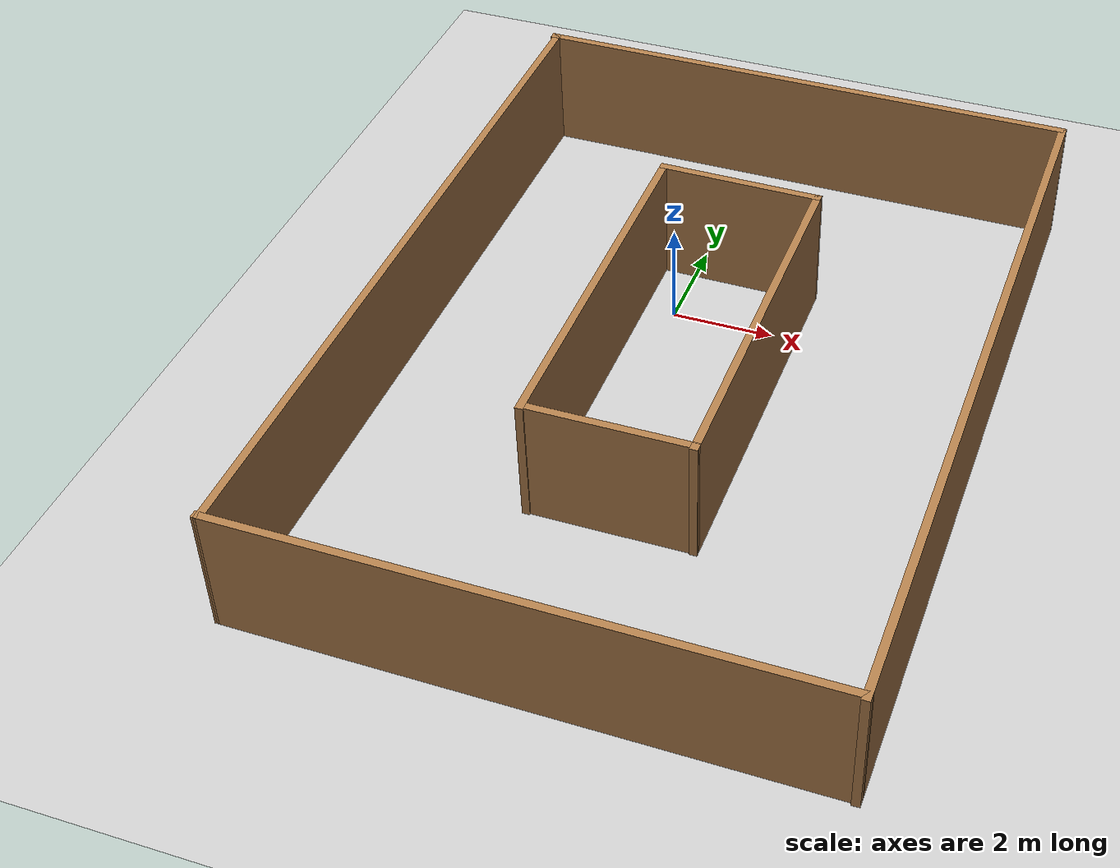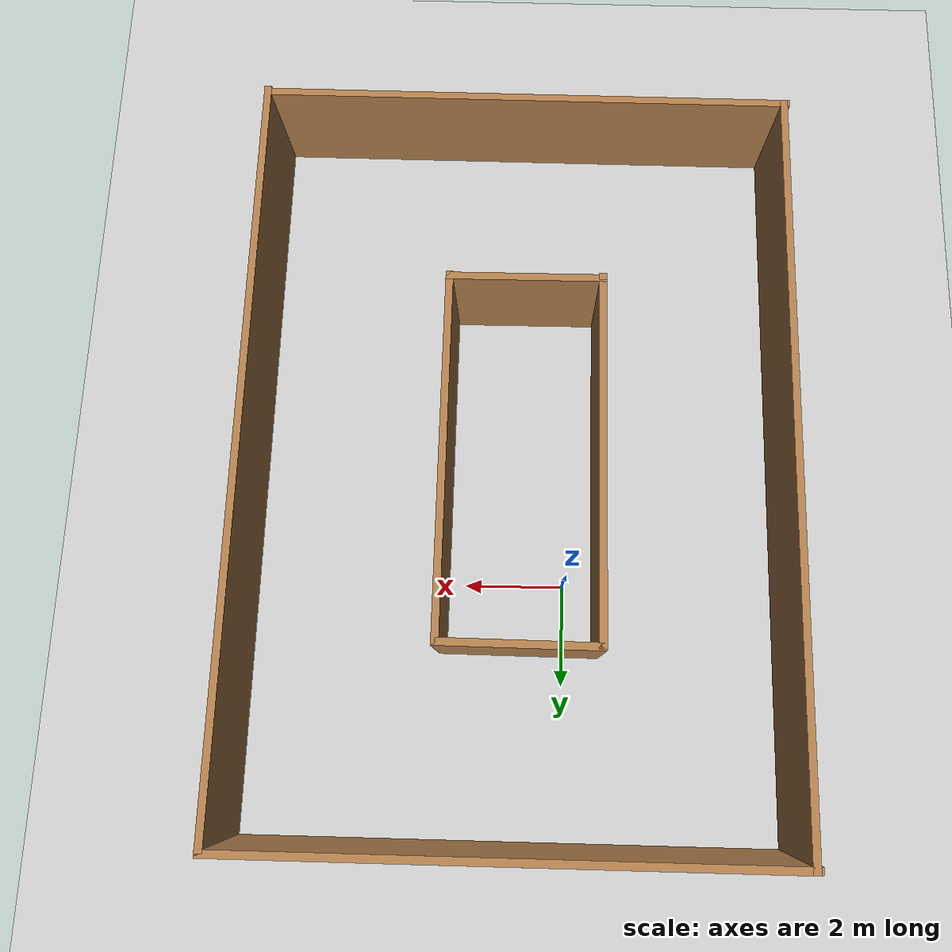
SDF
<?xml version="1.0" ?>
<sdf version="1.4">

  <world name="default">

    <include>
      <uri>model://ground_plane</uri>
    </include>

<model name='simple_world'>
    <pose frame=''>0.974545 -2.46087 0 0 -0 0</pose>
    <link name='Wall_0'>
      <collision name='Wall_0_Collision'>
        <geometry>
          <box>
            <size>15.2864 0.15 2.5</size>
          </box>
        </geometry>
        <pose frame=''>0 0 1.25 0 -0 0</pose>
      </collision>
      <visual name='Wall_0_Visual'>
        <pose frame=''>0 0 1.25 0 -0 0</pose>
        <geometry>
          <box>
            <size>15.2864 0.15 2.5</size>
          </box>
        </geometry>
        <material>
          <script>
            <uri>file://media/materials/scripts/gazebo.material</uri>
            <name>Gazebo/Wood</name>
          </script>
          <ambient>1 1 1 1</ambient>
        </material>
        <meta>
          <layer>0</layer>
        </meta>
      </visual>
      <pose frame=''>-5.41047 0.040317 0 0 -0 -1.5708</pose>
    </link>
    <link name='Wall_1'>
      <collision name='Wall_1_Collision'>
        <geometry>
          <box>
            <size>11.0519 0.15 2.5</size>
          </box>
        </geometry>
        <pose frame=''>0 0 1.25 0 -0 0</pose>
      </collision>
      <visual name='Wall_1_Visual'>
        <pose frame=''>0 0 1.25 0 -0 0</pose>
        <geometry>
          <box>
            <size>11.0519 0.15 2.5</size>
          </box>
        </geometry>
        <material>
          <script>
            <uri>file://media/materials/scripts/gazebo.material</uri>
            <name>Gazebo/Wood</name>
          </script>
          <ambient>1 1 1 1</ambient>
        </material>
        <meta>
          <layer>0</layer>
        </meta>
      </visual>
      <pose frame=''>-0 -7.54809 0 0 -0 -0.003711</pose>
    </link>
    <link name='Wall_2'>
      <collision name='Wall_2_Collision'>
        <geometry>
          <box>
            <size>15.2864 0.15 2.5</size>
          </box>
        </geometry>
        <pose frame=''>0 0 1.25 0 -0 0</pose>
      </collision>
      <visual name='Wall_2_Visual'>
        <pose frame=''>0 0 1.25 0 -0 0</pose>
        <geometry>
          <box>
            <size>15.2864 0.15 2.5</size>
          </box>
        </geometry>
        <material>
          <script>
            <uri>file://media/materials/scripts/gazebo.material</uri>
            <name>Gazebo/Wood</name>
          </script>
          <ambient>1 1 1 1</ambient>
        </material>
        <meta>
          <layer>0</layer>
        </meta>
      </visual>
      <pose frame=''>5.45092 -0.040594 0 0 -0 1.5708</pose>
    </link>
    <link name='Wall_3'>
      <collision name='Wall_3_Collision'>
        <geometry>
          <box>
            <size>11.0519 0.15 2.5</size>
          </box>
        </geometry>
        <pose frame=''>0 0 1.25 0 -0 0</pose>
      </collision>
      <visual name='Wall_3_Visual'>
        <pose frame=''>0 0 1.25 0 -0 0</pose>
        <geometry>
          <box>
            <size>11.0519 0.15 2.5</size>
          </box>
        </geometry>
        <material>
          <script>
            <uri>file://media/materials/scripts/gazebo.material</uri>
            <name>Gazebo/Wood</name>
          </script>
          <ambient>1 1 1 1</ambient>
        </material>
        <meta>
          <layer>0</layer>
        </meta>
      </visual>
      <pose frame=''>-0 7.58827 0 0 -0 3.13788</pose>
    </link>
    <link name='Wall_5'>
      <collision name='Wall_5_Collision'>
        <geometry>
          <box>
            <size>7.4546 0.15 2.5</size>
          </box>
        </geometry>
        <pose frame=''>0 0 1.25 0 -0 0</pose>
      </collision>
      <visual name='Wall_5_Visual'>
        <pose frame=''>0 0 1.25 0 -0 0</pose>
        <geometry>
          <box>
            <size>7.4546 0.15 2.5</size>
          </box>
        </geometry>
        <material>
          <script>
            <uri>file://media/materials/scripts/gazebo.material</uri>
            <name>Gazebo/Wood</name>
          </script>
          <ambient>1 1 1 1</ambient>
        </material>
        <meta>
          <layer>0</layer>
        </meta>
      </visual>
      <pose frame=''>-1.64348 0.140571 0 0 -0 1.57516</pose>
    </link>
    <link name='Wall_6'>
      <collision name='Wall_6_Collision'>
        <geometry>
          <box>
            <size>3.2646 0.15 2.5</size>
          </box>
        </geometry>
        <pose frame=''>0 0 1.25 0 -0 0</pose>
      </collision>
      <visual name='Wall_6_Visual'>
        <pose frame=''>0 0 1.25 0 -0 0</pose>
        <geometry>
          <box>
            <size>3.2646 0.15 2.5</size>
          </box>
        </geometry>
        <material>
          <script>
            <uri>file://media/materials/scripts/gazebo.material</uri>
            <name>Gazebo/Wood</name>
          </script>
          <ambient>1 1 1 1</ambient>
        </material>
        <meta>
          <layer>0</layer>
        </meta>
      </visual>
      <pose frame=''>-0.102187 3.80491 0 0 -0 -0.009332</pose>
    </link>
    <link name='Wall_7'>
      <collision name='Wall_7_Collision'>
        <geometry>
          <box>
            <size>7.41408 0.15 2.5</size>
          </box>
        </geometry>
        <pose frame=''>0 0 1.25 0 -0 0</pose>
      </collision>
      <visual name='Wall_7_Visual'>
        <pose frame=''>0 0 1.25 0 -0 0</pose>
        <geometry>
          <box>
            <size>7.41408 0.15 2.5</size>
          </box>
        </geometry>
        <material>
          <script>
            <uri>file://media/materials/scripts/gazebo.material</uri>
            <name>Gazebo/Wood</name>
          </script>
          <ambient>1 1 1 1</ambient>
        </material>
        <meta>
          <layer>0</layer>
        </meta>
      </visual>
      <pose frame=''>1.45768 0.131734 0 0 -0 -1.57007</pose>
    </link>
    <link name='Wall_8'>
      <collision name='Wall_8_Collision'>
        <geometry>
          <box>
            <size>3.23788 0.15 2.5</size>
          </box>
        </geometry>
        <pose frame=''>0 0 1.25 0 -0 0</pose>
      </collision>
      <visual name='Wall_8_Visual'>
        <pose frame=''>0 0 1.25 0 -0 0</pose>
        <geometry>
          <box>
            <size>3.23788 0.15 2.5</size>
          </box>
        </geometry>
        <material>
          <script>
            <uri>file://media/materials/scripts/gazebo.material</uri>
            <name>Gazebo/Wood</name>
          </script>
          <ambient>1 1 1 1</ambient>
        </material>
        <meta>
          <layer>0</layer>
        </meta>
      </visual>
      <pose frame=''>-0.08361 -3.4794 0 0 -0 -3.1379</pose>
    </link>
    <static>1</static>
  </model>
    <!-- Global light source -->
    <include>
      <uri>model://sun</uri>
    </include>

    <!-- Focus camera on tall pendulum -->
    <gui fullscreen='0'>
      <camera name='user_camera'>
        <pose>4.927360 -4.376610 3.740080 0.000000 0.275643 2.356190</pose>
        <view_controller>orbit</view_controller>
      </camera>
    </gui>

  </world>
</sdf>
